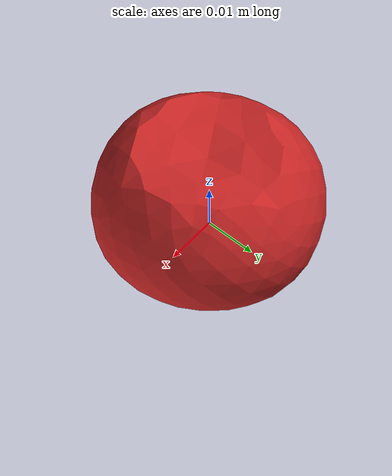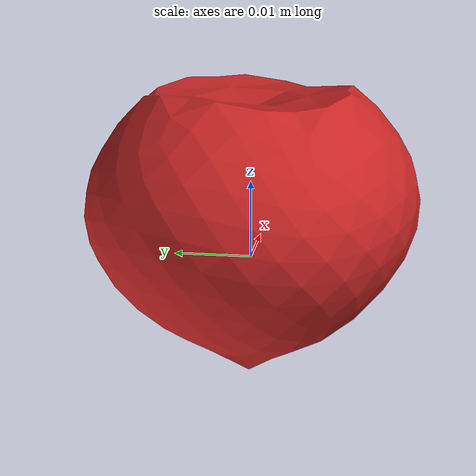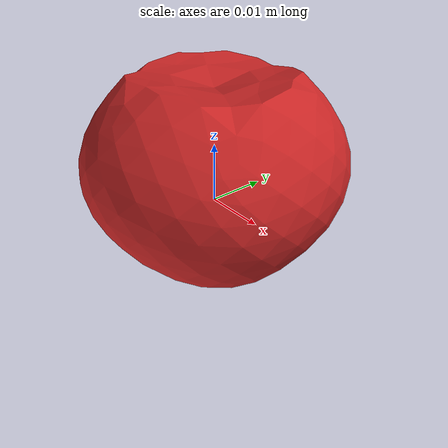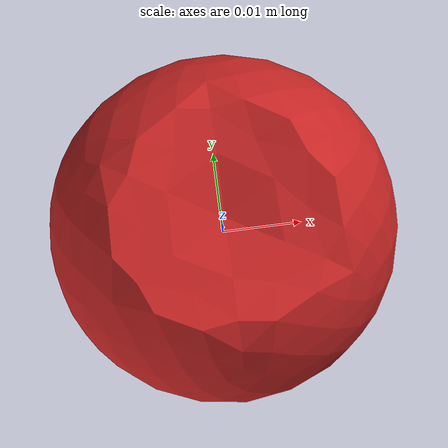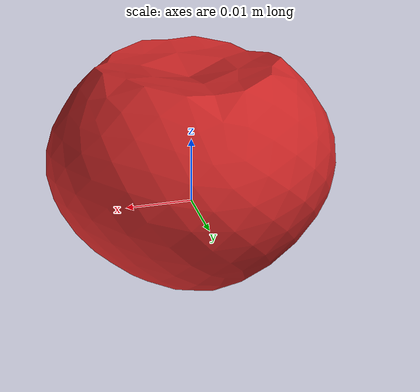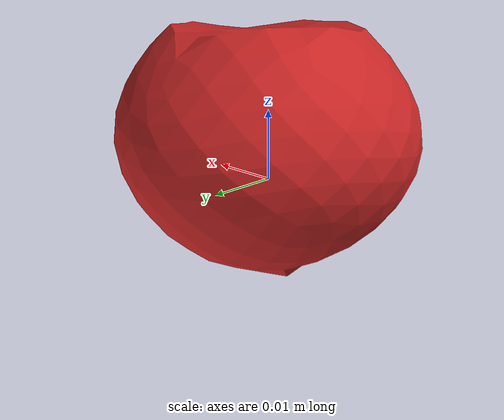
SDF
<?xml version="1.0" ?>
<sdf version="1.5">
  <model name="strawberry">
    <link name="strawberry">
      <gravity>true</gravity>

      <linear_damping>0.01</linear_damping>
      <angular_damping>0.05</angular_damping>

      <inertial>
        <pose>0 0 -0.003 0 0 0</pose>
        <mass>0.02</mass>
        <inertia>
          <ixx>0.0000038</ixx> <ixy>0</ixy> <ixz>0</ixz>
          <iyy>0.0000038</iyy> <iyz>0</iyz>
          <izz>0.0000038</izz>
        </inertia>
      </inertial>

      <collision name="strawberry_collision">
        <pose>0 0 0 0 0 0</pose>
        <geometry>
          <mesh>
            <uri>model://strawberry/meshes/strawberry.dae</uri>
            </mesh>
        </geometry>
        <surface>
          <friction>
            <ode>
              <mu>1.0</mu>
              <mu2>1.0</mu2>
            </ode>
          </friction>
          <contact>
            <ode>
              <kp>1000000.0</kp>
              <kd>1.0</kd>
              <min_depth>0.001</min_depth>
              <max_vel>0.0</max_vel>
            </ode>
          </contact>
        </surface>
      </collision>

      <visual name="strawberry_visual">
        <geometry>
          <mesh>
            <uri>model://strawberry/meshes/strawberry.dae</uri>
          </mesh>
        </geometry>
      </visual>

    </link>
  </model>
</sdf>
